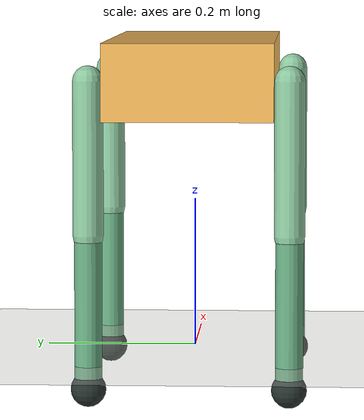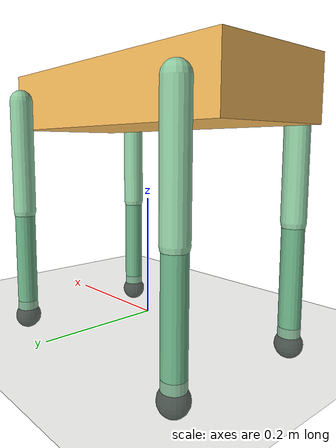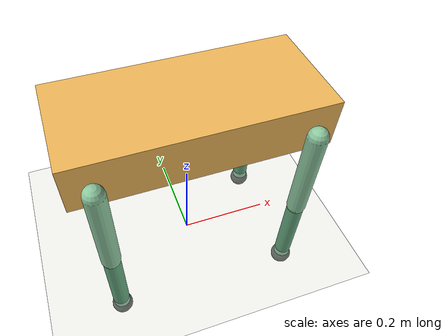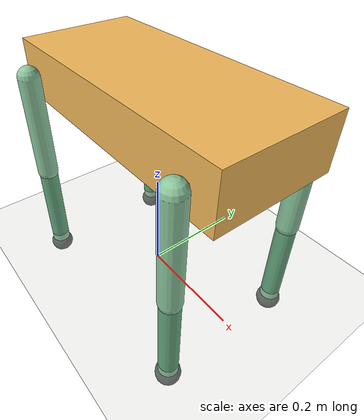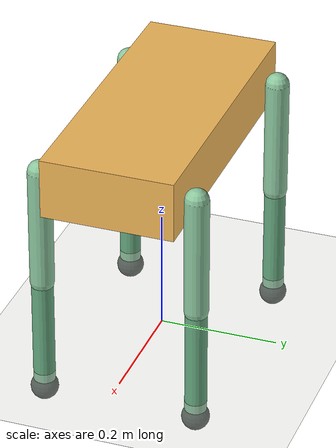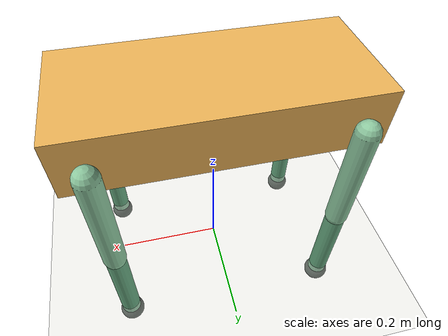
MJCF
<mujoco model="quadruped">
  <compiler angle="radian"/>
  <option timestep="0.004" integrator="implicitfast"/>
  <visual><global offwidth="1280" offheight="720"/></visual>
  <worldbody>
    <geom name="floor" type="plane" size="0 0 0.05" contype="1" conaffinity="1" friction="1 0.05 0.01" rgba="0.9 0.9 0.86 1"/>
    <body name="torso" pos="0 0 0.369092">
      <freejoint name="root"/>
      <geom name="torso_geom" type="box" contype="0" conaffinity="1" size="0.25 0.11 0.05" mass="2.66" rgba="0.95 0.72 0.35 1"/>
      <site name="imu" pos="0 0 0"/>
      <body name="l0_thigh" pos="0.2 0.13 0">
        <joint name="l0_abd" type="hinge" axis="1 0 0" range="-1 1" damping="0.4" armature="0.01"/>
        <joint name="l0_hip" type="hinge" axis="0 1 0" range="-2.5 2.5" damping="0.4" armature="0.01"/>
        <geom type="capsule" fromto="0 0 0 0 0 -0.2" size="0.02" contype="0" conaffinity="1" mass="0.25" rgba="0.55 0.78 0.62 1"/>
        <body name="l0_shin" pos="0 0 -0.2">
          <joint name="l0_knee" type="hinge" axis="0 1 0" range="0 2.6" damping="0.3" armature="0.01"/>
          <geom type="capsule" fromto="0 0 0 0 0 -0.2" size="0.018" contype="0" conaffinity="1" mass="0.15" rgba="0.4 0.66 0.5 1"/>
          <geom name="l0_foot" type="sphere" pos="0 0 -0.2" size="0.023" mass="0.05" contype="0" conaffinity="1" friction="1.2 0.05 0.01" rgba="0.15 0.2 0.18 1"/>
        </body>
      </body>
      <body name="r0_thigh" pos="0.2 -0.13 0">
        <joint name="r0_abd" type="hinge" axis="1 0 0" range="-1 1" damping="0.4" armature="0.01"/>
        <joint name="r0_hip" type="hinge" axis="0 1 0" range="-2.5 2.5" damping="0.4" armature="0.01"/>
        <geom type="capsule" fromto="0 0 0 0 0 -0.2" size="0.02" contype="0" conaffinity="1" mass="0.25" rgba="0.55 0.78 0.62 1"/>
        <body name="r0_shin" pos="0 0 -0.2">
          <joint name="r0_knee" type="hinge" axis="0 1 0" range="0 2.6" damping="0.3" armature="0.01"/>
          <geom type="capsule" fromto="0 0 0 0 0 -0.2" size="0.018" contype="0" conaffinity="1" mass="0.15" rgba="0.4 0.66 0.5 1"/>
          <geom name="r0_foot" type="sphere" pos="0 0 -0.2" size="0.023" mass="0.05" contype="0" conaffinity="1" friction="1.2 0.05 0.01" rgba="0.15 0.2 0.18 1"/>
        </body>
      </body>
      <body name="l1_thigh" pos="-0.2 0.13 0">
        <joint name="l1_abd" type="hinge" axis="1 0 0" range="-1 1" damping="0.4" armature="0.01"/>
        <joint name="l1_hip" type="hinge" axis="0 1 0" range="-2.5 2.5" damping="0.4" armature="0.01"/>
        <geom type="capsule" fromto="0 0 0 0 0 -0.2" size="0.02" contype="0" conaffinity="1" mass="0.25" rgba="0.55 0.78 0.62 1"/>
        <body name="l1_shin" pos="0 0 -0.2">
          <joint name="l1_knee" type="hinge" axis="0 1 0" range="0 2.6" damping="0.3" armature="0.01"/>
          <geom type="capsule" fromto="0 0 0 0 0 -0.2" size="0.018" contype="0" conaffinity="1" mass="0.15" rgba="0.4 0.66 0.5 1"/>
          <geom name="l1_foot" type="sphere" pos="0 0 -0.2" size="0.023" mass="0.05" contype="0" conaffinity="1" friction="1.2 0.05 0.01" rgba="0.15 0.2 0.18 1"/>
        </body>
      </body>
      <body name="r1_thigh" pos="-0.2 -0.13 0">
        <joint name="r1_abd" type="hinge" axis="1 0 0" range="-1 1" damping="0.4" armature="0.01"/>
        <joint name="r1_hip" type="hinge" axis="0 1 0" range="-2.5 2.5" damping="0.4" armature="0.01"/>
        <geom type="capsule" fromto="0 0 0 0 0 -0.2" size="0.02" contype="0" conaffinity="1" mass="0.25" rgba="0.55 0.78 0.62 1"/>
        <body name="r1_shin" pos="0 0 -0.2">
          <joint name="r1_knee" type="hinge" axis="0 1 0" range="0 2.6" damping="0.3" armature="0.01"/>
          <geom type="capsule" fromto="0 0 0 0 0 -0.2" size="0.018" contype="0" conaffinity="1" mass="0.15" rgba="0.4 0.66 0.5 1"/>
          <geom name="r1_foot" type="sphere" pos="0 0 -0.2" size="0.023" mass="0.05" contype="0" conaffinity="1" friction="1.2 0.05 0.01" rgba="0.15 0.2 0.18 1"/>
        </body>
      </body>
    </body>
  </worldbody>
  <actuator>
    <position name="l0_abd_a" joint="l0_abd" kp="40" kv="1.2" ctrlrange="-1 1" forcerange="-12 12"/>
    <position name="l0_hip_a" joint="l0_hip" kp="40" kv="1.2" ctrlrange="-2.5 2.5" forcerange="-12 12"/>
    <position name="l0_knee_a" joint="l0_knee" kp="40" kv="1.2" ctrlrange="0 2.6" forcerange="-12 12"/>
    <position name="r0_abd_a" joint="r0_abd" kp="40" kv="1.2" ctrlrange="-1 1" forcerange="-12 12"/>
    <position name="r0_hip_a" joint="r0_hip" kp="40" kv="1.2" ctrlrange="-2.5 2.5" forcerange="-12 12"/>
    <position name="r0_knee_a" joint="r0_knee" kp="40" kv="1.2" ctrlrange="0 2.6" forcerange="-12 12"/>
    <position name="l1_abd_a" joint="l1_abd" kp="40" kv="1.2" ctrlrange="-1 1" forcerange="-12 12"/>
    <position name="l1_hip_a" joint="l1_hip" kp="40" kv="1.2" ctrlrange="-2.5 2.5" forcerange="-12 12"/>
    <position name="l1_knee_a" joint="l1_knee" kp="40" kv="1.2" ctrlrange="0 2.6" forcerange="-12 12"/>
    <position name="r1_abd_a" joint="r1_abd" kp="40" kv="1.2" ctrlrange="-1 1" forcerange="-12 12"/>
    <position name="r1_hip_a" joint="r1_hip" kp="40" kv="1.2" ctrlrange="-2.5 2.5" forcerange="-12 12"/>
    <position name="r1_knee_a" joint="r1_knee" kp="40" kv="1.2" ctrlrange="0 2.6" forcerange="-12 12"/>
  </actuator>
  <keyframe>
    <key name="home" qpos="0 0 0.369092 1 0 0 0 0.3 -0.45 0.9 -0.3 -0.45 0.9 0.3 -0.45 0.9 -0.3 -0.45 0.9" ctrl="0.3 -0.45 0.9 -0.3 -0.45 0.9 0.3 -0.45 0.9 -0.3 -0.45 0.9"/>
  </keyframe>
</mujoco>
